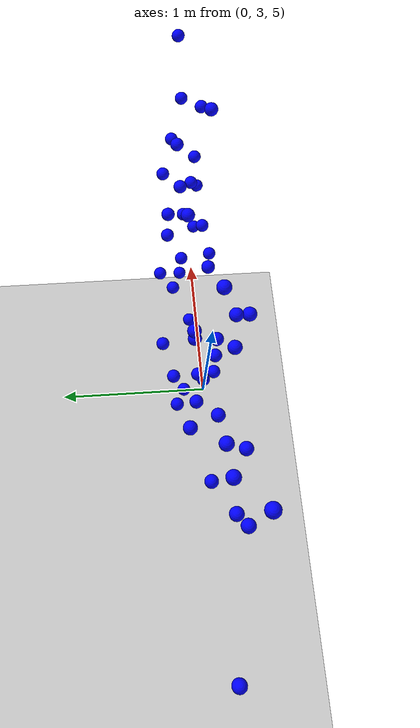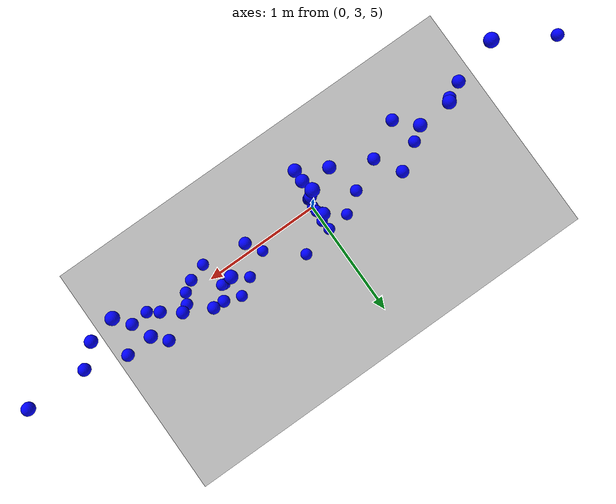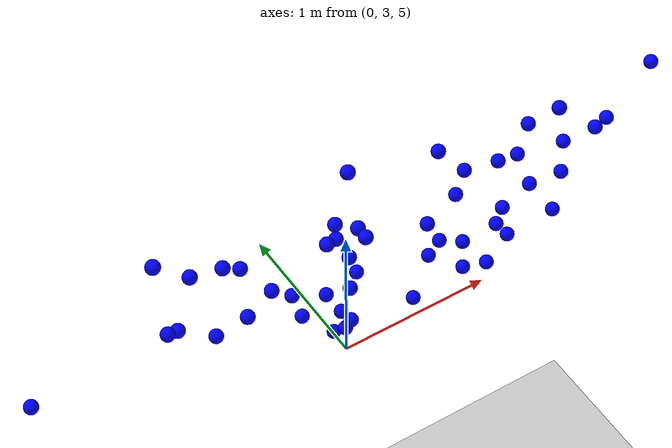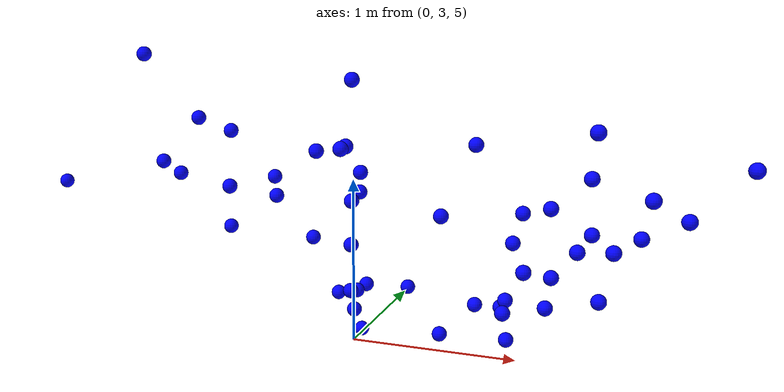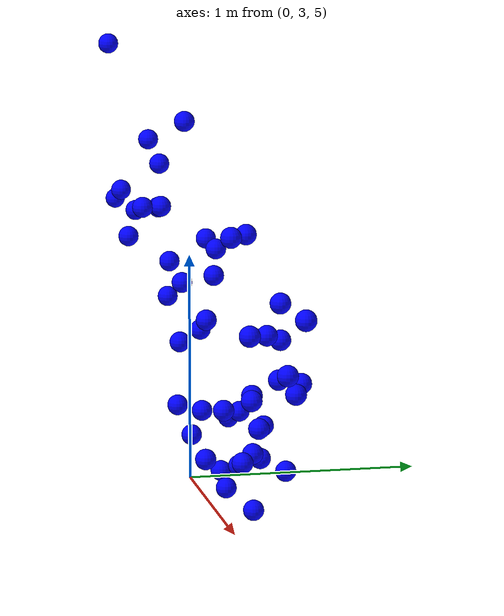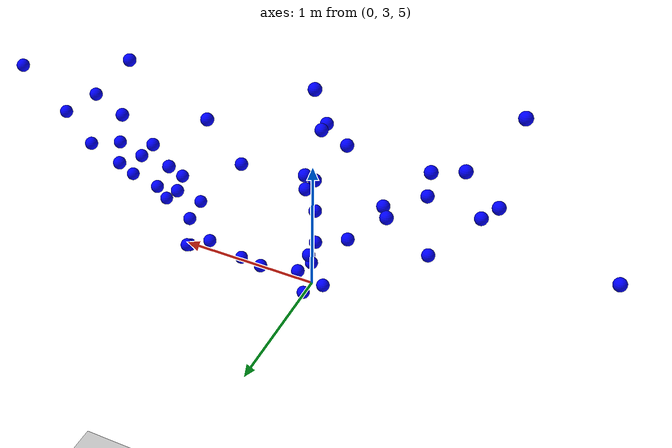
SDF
<sdf version="1.10">
 <world name="sphere">
  <model name="ground_plane">
   <static>true</static>
   <link name="link">
    <collision name="collision">
     <geometry><plane><normal>0 0 1</normal><size>100 100</size></plane></geometry>
    </collision>
    <visual name="visual">
     <geometry><plane><normal>0 0 1</normal><size>100 100</size></plane></geometry>
     <material>
      <ambient>0.800000012 0.800000012 0.800000012 1</ambient>
      <diffuse>0.800000012 0.800000012 0.800000012 1</diffuse>
      <specular>0.800000012 0.800000012 0.800000012 1</specular>
     </material>
    </visual>
    <inertial>
     <mass>1</mass>
     <inertia><ixx>1</ixx><ixy>0</ixy><ixz>0</ixz><iyy>1</iyy><iyz>0</iyz><izz>1</izz></inertia>
    </inertial>
   </link>
  </model>
  <model name="sphere_00">
   <pose>-0.8101000189781189 3.01882004737854 6.2474203109741211 0 0 0</pose>
   <link name="sphere_link">
    <inertial>
     <inertia>
      <ixx>0.10000000000000001</ixx>
      <ixy>0</ixy>
      <ixz>0</ixz>
      <iyy>0.10000000000000001</iyy>
      <iyz>0</iyz>
      <izz>0.10000000000000001</izz>
     </inertia>
     <mass>1</mass>
    </inertial>
    <collision name="sphere_collision">
     <geometry><sphere><radius>0.044999999999999998</radius></sphere></geometry>
    </collision>
    <visual name="sphere_visual">
     <geometry><sphere><radius>0.044999999999999998</radius></sphere></geometry>
     <material><ambient>0 0 1 1</ambient><diffuse>0 0 1 1</diffuse><specular>0 0 1 1</specular></material>
    </visual>
   </link>
   <static>false</static>
   <self_collide>true</self_collide>
  </model>
  <model name="sphere_01">
   <pose>-0.30862641334533691 3.1076400279998779 5.5938301086425781 0 0 0</pose>
   <link name="sphere_link">
    <inertial>
     <inertia>
      <ixx>0.10000000000000001</ixx>
      <ixy>0</ixy>
      <ixz>0</ixz>
      <iyy>0.10000000000000001</iyy>
      <iyz>0</iyz>
      <izz>0.10000000000000001</izz>
     </inertia>
     <mass>1</mass>
    </inertial>
    <collision name="sphere_collision">
     <geometry><sphere><radius>0.044999999999999998</radius></sphere></geometry>
    </collision>
    <visual name="sphere_visual">
     <geometry><sphere><radius>0.044999999999999998</radius></sphere></geometry>
     <material><ambient>0 0 1 1</ambient><diffuse>0 0 1 1</diffuse><specular>0 0 1 1</specular></material>
    </visual>
   </link>
   <static>false</static>
   <self_collide>true</self_collide>
  </model>
  <model name="sphere_02">
   <pose>-0.18142400681972504 3.2076399326324463 5.2198047637939453 0 0 0</pose>
   <link name="sphere_link">
    <inertial>
     <inertia>
      <ixx>0.10000000000000001</ixx>
      <ixy>0</ixy>
      <ixz>0</ixz>
      <iyy>0.10000000000000001</iyy>
      <iyz>0</iyz>
      <izz>0.10000000000000001</izz>
     </inertia>
     <mass>1</mass>
    </inertial>
    <collision name="sphere_collision">
     <geometry><sphere><radius>0.044999999999999998</radius></sphere></geometry>
    </collision>
    <visual name="sphere_visual">
     <geometry><sphere><radius>0.044999999999999998</radius></sphere></geometry>
     <material><ambient>0 0 1 1</ambient><diffuse>0 0 1 1</diffuse><specular>0 0 1 1</specular></material>
    </visual>
   </link>
   <static>false</static>
   <self_collide>true</self_collide>
  </model>
  <model name="sphere_03">
   <pose>1.3758639097213745 3.2076399326324463 5.7371301651000977 0 0 0</pose>
   <link name="sphere_link">
    <inertial>
     <inertia>
      <ixx>0.10000000000000001</ixx>
      <ixy>0</ixy>
      <ixz>0</ixz>
      <iyy>0.10000000000000001</iyy>
      <iyz>0</iyz>
      <izz>0.10000000000000001</izz>
     </inertia>
     <mass>1</mass>
    </inertial>
    <collision name="sphere_collision">
     <geometry><sphere><radius>0.044999999999999998</radius></sphere></geometry>
    </collision>
    <visual name="sphere_visual">
     <geometry><sphere><radius>0.044999999999999998</radius></sphere></geometry>
     <material><ambient>0 0 1 1</ambient><diffuse>0 0 1 1</diffuse><specular>0 0 1 1</specular></material>
    </visual>
   </link>
   <static>false</static>
   <self_collide>true</self_collide>
  </model>
  <model name="sphere_04">
   <pose>0.90909630060195923 3.0961899757385254 5.3272900581359863 0 0 0</pose>
   <link name="sphere_link">
    <inertial>
     <inertia>
      <ixx>0.10000000000000001</ixx>
      <ixy>0</ixy>
      <ixz>0</ixz>
      <iyy>0.10000000000000001</iyy>
      <iyz>0</iyz>
      <izz>0.10000000000000001</izz>
     </inertia>
     <mass>1</mass>
    </inertial>
    <collision name="sphere_collision">
     <geometry><sphere><radius>0.044999999999999998</radius></sphere></geometry>
    </collision>
    <visual name="sphere_visual">
     <geometry><sphere><radius>0.044999999999999998</radius></sphere></geometry>
     <material><ambient>0 0 1 1</ambient><diffuse>0 0 1 1</diffuse><specular>0 0 1 1</specular></material>
    </visual>
   </link>
   <static>false</static>
   <self_collide>true</self_collide>
  </model>
  <model name="sphere_05">
   <pose>0 2.9661004543304443 5.8801798820495605 0 0 0</pose>
   <link name="sphere_link">
    <inertial>
     <inertia>
      <ixx>0.10000000000000001</ixx>
      <ixy>0</ixy>
      <ixz>0</ixz>
      <iyy>0.10000000000000001</iyy>
      <iyz>0</iyz>
      <izz>0.10000000000000001</izz>
     </inertia>
     <mass>1</mass>
    </inertial>
    <collision name="sphere_collision">
     <geometry><sphere><radius>0.044999999999999998</radius></sphere></geometry>
    </collision>
    <visual name="sphere_visual">
     <geometry><sphere><radius>0.044999999999999998</radius></sphere></geometry>
     <material><ambient>0 0 1 1</ambient><diffuse>0 0 1 1</diffuse><specular>0 0 1 1</specular></material>
    </visual>
   </link>
   <static>false</static>
   <self_collide>true</self_collide>
  </model>
  <model name="sphere_06">
   <pose>0.52478998899459839 3.0577552318572998 5.0836100578308105 0 0 0</pose>
   <link name="sphere_link">
    <inertial>
     <inertia>
      <ixx>0.10000000000000001</ixx>
      <ixy>0</ixy>
      <ixz>0</ixz>
      <iyy>0.10000000000000001</iyy>
      <iyz>0</iyz>
      <izz>0.10000000000000001</izz>
     </inertia>
     <mass>1</mass>
     <pose>0 0 0.69999999999999996 0 0 0</pose>
    </inertial>
    <collision name="sphere_collision">
     <geometry><sphere><radius>0.044999999999999998</radius></sphere></geometry>
    </collision>
    <visual name="sphere_visual">
     <geometry><sphere><radius>0.044999999999999998</radius></sphere></geometry>
     <material><ambient>0 0 1 1</ambient><diffuse>0 0 1 1</diffuse><specular>0 0 1 1</specular></material>
    </visual>
   </link>
   <static>false</static>
   <self_collide>true</self_collide>
  </model>
  <model name="sphere_07">
   <pose>0.84674102067947388 3.2525029182434082 5.2275600433349609 0 0 0</pose>
   <link name="sphere_link">
    <inertial>
     <inertia>
      <ixx>0.10000000000000001</ixx>
      <ixy>0</ixy>
      <ixz>0</ixz>
      <iyy>0.10000000000000001</iyy>
      <iyz>0</iyz>
      <izz>0.10000000000000001</izz>
     </inertia>
     <mass>1</mass>
    </inertial>
    <collision name="sphere_collision">
     <geometry><sphere><radius>0.044999999999999998</radius></sphere></geometry>
    </collision>
    <visual name="sphere_visual">
     <geometry><sphere><radius>0.044999999999999998</radius></sphere></geometry>
     <material><ambient>0 0 1 1</ambient><diffuse>0 0 1 1</diffuse><specular>0 0 1 1</specular></material>
    </visual>
   </link>
   <static>false</static>
   <self_collide>true</self_collide>
  </model>
  <model name="sphere_08">
   <pose>0 3.0543978214263916 5.3013801574707031 0 0 0</pose>
   <link name="sphere_link">
    <inertial>
     <inertia>
      <ixx>0.10000000000000001</ixx>
      <ixy>0</ixy>
      <ixz>0</ixz>
      <iyy>0.10000000000000001</iyy>
      <iyz>0</iyz>
      <izz>0.10000000000000001</izz>
     </inertia>
     <mass>1</mass>
    </inertial>
    <collision name="sphere_collision">
     <geometry><sphere><radius>0.044999999999999998</radius></sphere></geometry>
    </collision>
    <visual name="sphere_visual">
     <geometry><sphere><radius>0.044999999999999998</radius></sphere></geometry>
     <material><ambient>0 0 1 1</ambient><diffuse>0 0 1 1</diffuse><specular>0 0 1 1</specular></material>
    </visual>
   </link>
   <static>false</static>
   <self_collide>true</self_collide>
  </model>
  <model name="sphere_09">
   <pose>-0.50494199991226196 3.0061700344085693 5.8660669326782227 0 0 0</pose>
   <link name="sphere_link">
    <inertial>
     <inertia>
      <ixx>0.10000000000000001</ixx>
      <ixy>0</ixy>
      <ixz>0</ixz>
      <iyy>0.10000000000000001</iyy>
      <iyz>0</iyz>
      <izz>0.10000000000000001</izz>
     </inertia>
     <mass>1</mass>
     <pose>0 0 0.69999999999999996 0 0 0</pose>
    </inertial>
    <collision name="sphere_collision">
     <geometry><sphere><radius>0.044999999999999998</radius></sphere></geometry>
    </collision>
    <visual name="sphere_visual">
     <geometry><sphere><radius>0.044999999999999998</radius></sphere></geometry>
     <material><ambient>0 0 1 1</ambient><diffuse>0 0 1 1</diffuse><specular>0 0 1 1</specular></material>
    </visual>
   </link>
   <static>false</static>
   <self_collide>true</self_collide>
  </model>
  <model name="sphere_10">
   <pose>0 3.2213499546051025 5.2891402244567871 0 0 0</pose>
   <link name="sphere_link">
    <inertial>
     <inertia>
      <ixx>0.10000000000000001</ixx>
      <ixy>0</ixy>
      <ixz>0</ixz>
      <iyy>0.10000000000000001</iyy>
      <iyz>0</iyz>
      <izz>0.10000000000000001</izz>
     </inertia>
     <mass>1</mass>
     <pose>0 0 0.69999999999999996 0 0 0</pose>
    </inertial>
    <collision name="sphere_collision">
     <geometry><sphere><radius>0.044999999999999998</radius></sphere></geometry>
    </collision>
    <visual name="sphere_visual">
     <geometry><sphere><radius>0.044999999999999998</radius></sphere></geometry>
     <material><ambient>0 0 1 1</ambient><diffuse>0 0 1 1</diffuse><specular>0 0 1 1</specular></material>
    </visual>
   </link>
   <static>false</static>
   <self_collide>true</self_collide>
  </model>
  <model name="sphere_11">
   <pose>0 2.9791254997253418 6.5953397750854492 0 0 0</pose>
   <link name="sphere_link">
    <inertial>
     <inertia>
      <ixx>0.10000000000000001</ixx>
      <ixy>0</ixy>
      <ixz>0</ixz>
      <iyy>0.10000000000000001</iyy>
      <iyz>0</iyz>
      <izz>0.10000000000000001</izz>
     </inertia>
     <mass>1</mass>
     <pose>0 0 0.69999999999999996 0 0 0</pose>
    </inertial>
    <collision name="sphere_collision">
     <geometry><sphere><radius>0.044999999999999998</radius></sphere></geometry>
    </collision>
    <visual name="sphere_visual">
     <geometry><sphere><radius>0.044999999999999998</radius></sphere></geometry>
     <material><ambient>0 0 1 1</ambient><diffuse>0 0 1 1</diffuse><specular>0 0 1 1</specular></material>
    </visual>
   </link>
   <static>false</static>
   <self_collide>true</self_collide>
  </model>
  <model name="sphere_12">
   <pose>1.1540199518203735 3.1078150272369385 5.8965902328491211 0 0 0</pose>
   <link name="sphere_link">
    <inertial>
     <inertia>
      <ixx>0.10000000000000001</ixx>
      <ixy>0</ixy>
      <ixz>0</ixz>
      <iyy>0.10000000000000001</iyy>
      <iyz>0</iyz>
      <izz>0.10000000000000001</izz>
     </inertia>
     <mass>1</mass>
     <pose>0 0 0.69999999999999996 0 0 0</pose>
    </inertial>
    <collision name="sphere_collision">
     <geometry><sphere><radius>0.044999999999999998</radius></sphere></geometry>
    </collision>
    <visual name="sphere_visual">
     <geometry><sphere><radius>0.044999999999999998</radius></sphere></geometry>
     <material><ambient>0 0 1 1</ambient><diffuse>0 0 1 1</diffuse><specular>0 0 1 1</specular></material>
    </visual>
   </link>
   <static>false</static>
   <self_collide>true</self_collide>
  </model>
  <model name="sphere_13">
   <pose>0.25382706522941589 3.2772500514984131 5.2821002006530762 0 0 0</pose>
   <link name="sphere_link">
    <inertial>
     <inertia>
      <ixx>0.10000000000000001</ixx>
      <ixy>0</ixy>
      <ixz>0</ixz>
      <iyy>0.10000000000000001</iyy>
      <iyz>0</iyz>
      <izz>0.10000000000000001</izz>
     </inertia>
     <mass>1</mass>
     <pose>0 0 0.69999999999999996 0 0 0</pose>
    </inertial>
    <collision name="sphere_collision">
     <geometry><sphere><radius>0.044999999999999998</radius></sphere></geometry>
    </collision>
    <visual name="sphere_visual">
     <geometry><sphere><radius>0.044999999999999998</radius></sphere></geometry>
     <material><ambient>0 0 1 1</ambient><diffuse>0 0 1 1</diffuse><specular>0 0 1 1</specular></material>
    </visual>
   </link>
   <static>false</static>
   <self_collide>true</self_collide>
  </model>
  <model name="sphere_14">
   <pose>1.0408979654312134 2.9444799423217773 5.5553398132324219 0 0 0</pose>
   <link name="sphere_link">
    <inertial>
     <inertia>
      <ixx>0.10000000000000001</ixx>
      <ixy>0</ixy>
      <ixz>0</ixz>
      <iyy>0.10000000000000001</iyy>
      <iyz>0</iyz>
      <izz>0.10000000000000001</izz>
     </inertia>
     <mass>1</mass>
     <pose>0 0 0.69999999999999996 0 0 0</pose>
    </inertial>
    <collision name="sphere_collision">
     <geometry><sphere><radius>0.044999999999999998</radius></sphere></geometry>
    </collision>
    <visual name="sphere_visual">
     <geometry><sphere><radius>0.044999999999999998</radius></sphere></geometry>
     <material><ambient>0 0 1 1</ambient><diffuse>0 0 1 1</diffuse><specular>0 0 1 1</specular></material>
    </visual>
   </link>
   <static>false</static>
   <self_collide>true</self_collide>
  </model>
  <model name="sphere_15">
   <pose>-0.19403360784053802 2.8993599414825439 6.1798100471496582 0 0 0</pose>
   <link name="sphere_link">
    <inertial>
     <inertia>
      <ixx>0.10000000000000001</ixx>
      <ixy>0</ixy>
      <ixz>0</ixz>
      <iyy>0.10000000000000001</iyy>
      <iyz>0</iyz>
      <izz>0.10000000000000001</izz>
     </inertia>
     <mass>1</mass>
     <pose>0 0 0.69999999999999996 0 0 0</pose>
    </inertial>
    <collision name="sphere_collision">
     <geometry><sphere><radius>0.044999999999999998</radius></sphere></geometry>
    </collision>
    <visual name="sphere_visual">
     <geometry><sphere><radius>0.044999999999999998</radius></sphere></geometry>
     <material><ambient>0 0 1 1</ambient><diffuse>0 0 1 1</diffuse><specular>0 0 1 1</specular></material>
    </visual>
   </link>
   <static>false</static>
   <self_collide>true</self_collide>
  </model>
  <model name="sphere_16">
   <pose>-1.3119100332260132 2.8792433738708496 6.7110099792480469 0 0 0</pose>
   <link name="sphere_link">
    <inertial>
     <inertia>
      <ixx>0.10000000000000001</ixx>
      <ixy>0</ixy>
      <ixz>0</ixz>
      <iyy>0.10000000000000001</iyy>
      <iyz>0</iyz>
      <izz>0.10000000000000001</izz>
     </inertia>
     <mass>1</mass>
     <pose>0 0 0.69999999999999996 0 0 0</pose>
    </inertial>
    <collision name="sphere_collision">
     <geometry><sphere><radius>0.044999999999999998</radius></sphere></geometry>
    </collision>
    <visual name="sphere_visual">
     <geometry><sphere><radius>0.044999999999999998</radius></sphere></geometry>
     <material><ambient>0 0 1 1</ambient><diffuse>0 0 1 1</diffuse><specular>0 0 1 1</specular></material>
    </visual>
   </link>
   <static>false</static>
   <self_collide>true</self_collide>
  </model>
  <model name="sphere_17">
   <pose>1.1766971349716187 3.0682199001312256 5.5024600028991699 0 0 0</pose>
   <link name="sphere_link">
    <inertial>
     <inertia>
      <ixx>0.10000000000000001</ixx>
      <ixy>0</ixy>
      <ixz>0</ixz>
      <iyy>0.10000000000000001</iyy>
      <iyz>0</iyz>
      <izz>0.10000000000000001</izz>
     </inertia>
     <mass>1</mass>
     <pose>0 0 0.69999999999999996 0 0 0</pose>
    </inertial>
    <collision name="sphere_collision">
     <geometry><sphere><radius>0.044999999999999998</radius></sphere></geometry>
    </collision>
    <visual name="sphere_visual">
     <geometry><sphere><radius>0.044999999999999998</radius></sphere></geometry>
     <material><ambient>0 0 1 1</ambient><diffuse>0 0 1 1</diffuse><specular>0 0 1 1</specular></material>
    </visual>
   </link>
   <static>false</static>
   <self_collide>true</self_collide>
  </model>
  <model name="sphere_18">
   <pose>1.3726999759674072 3.1196067333221436 6.0826001167297363 0 0 0</pose>
   <link name="sphere_link">
    <inertial>
     <inertia>
      <ixx>0.10000000000000001</ixx>
      <ixy>0</ixy>
      <ixz>0</ixz>
      <iyy>0.10000000000000001</iyy>
      <iyz>0</iyz>
      <izz>0.10000000000000001</izz>
     </inertia>
     <mass>1</mass>
     <pose>0 0 0.69999999999999996 0 0 0</pose>
    </inertial>
    <collision name="sphere_collision">
     <geometry><sphere><radius>0.044999999999999998</radius></sphere></geometry>
    </collision>
    <visual name="sphere_visual">
     <geometry><sphere><radius>0.044999999999999998</radius></sphere></geometry>
     <material><ambient>0 0 1 1</ambient><diffuse>0 0 1 1</diffuse><specular>0 0 1 1</specular></material>
    </visual>
   </link>
   <static>false</static>
   <self_collide>true</self_collide>
  </model>
  <model name="sphere_19">
   <pose>-0.74941295385360718 2.8662300109863281 5.9346098899841309 0 0 0</pose>
   <link name="sphere_link">
    <inertial>
     <inertia>
      <ixx>0.10000000000000001</ixx>
      <ixy>0</ixy>
      <ixz>0</ixz>
      <iyy>0.10000000000000001</iyy>
      <iyz>0</iyz>
      <izz>0.10000000000000001</izz>
     </inertia>
     <mass>1</mass>
     <pose>0 0 0.69999999999999996 0 0 0</pose>
    </inertial>
    <collision name="sphere_collision">
     <geometry><sphere><radius>0.044999999999999998</radius></sphere></geometry>
    </collision>
    <visual name="sphere_visual">
     <geometry><sphere><radius>0.044999999999999998</radius></sphere></geometry>
     <material><ambient>0 0 1 1</ambient><diffuse>0 0 1 1</diffuse><specular>0 0 1 1</specular></material>
    </visual>
   </link>
   <static>false</static>
   <self_collide>true</self_collide>
  </model>
  <model name="sphere_20">
   <pose>1.5283499956130981 2.966209888458252 5.7112307548522949 0 0 0</pose>
   <link name="sphere_link">
    <inertial>
     <inertia>
      <ixx>0.10000000000000001</ixx>
      <ixy>0</ixy>
      <ixz>0</ixz>
      <iyy>0.10000000000000001</iyy>
      <iyz>0</iyz>
      <izz>0.10000000000000001</izz>
     </inertia>
     <mass>1</mass>
     <pose>0 0 0.69999999999999996 0 0 0</pose>
    </inertial>
    <collision name="sphere_collision">
     <geometry><sphere><radius>0.044999999999999998</radius></sphere></geometry>
    </collision>
    <visual name="sphere_visual">
     <geometry><sphere><radius>0.044999999999999998</radius></sphere></geometry>
     <material><ambient>0 0 1 1</ambient><diffuse>0 0 1 1</diffuse><specular>0 0 1 1</specular></material>
    </visual>
   </link>
   <static>false</static>
   <self_collide>true</self_collide>
  </model>
  <model name="sphere_21">
   <pose>2.2217400074005127 3.0480799674987793 6.2031421661376953 0 0 0</pose>
   <link name="sphere_link">
    <inertial>
     <inertia>
      <ixx>0.10000000000000001</ixx>
      <ixy>0</ixy>
      <ixz>0</ixz>
      <iyy>0.10000000000000001</iyy>
      <iyz>0</iyz>
      <izz>0.10000000000000001</izz>
     </inertia>
     <mass>1</mass>
     <pose>0 0 0.69999999999999996 0 0 0</pose>
    </inertial>
    <collision name="sphere_collision">
     <geometry><sphere><radius>0.044999999999999998</radius></sphere></geometry>
    </collision>
    <visual name="sphere_visual">
     <geometry><sphere><radius>0.044999999999999998</radius></sphere></geometry>
     <material><ambient>0 0 1 1</ambient><diffuse>0 0 1 1</diffuse><specular>0 0 1 1</specular></material>
    </visual>
   </link>
   <static>false</static>
   <self_collide>true</self_collide>
  </model>
  <model name="sphere_22">
   <pose>-1.0258899927139282 3.0086886882781982 6.3174500465393066 0 0 0</pose>
   <link name="sphere_link">
    <inertial>
     <inertia>
      <ixx>0.10000000000000001</ixx>
      <ixy>0</ixy>
      <ixz>0</ixz>
      <iyy>0.10000000000000001</iyy>
      <iyz>0</iyz>
      <izz>0.10000000000000001</izz>
     </inertia>
     <mass>1</mass>
     <pose>0 0 0.69999999999999996 0 0 0</pose>
    </inertial>
    <collision name="sphere_collision">
     <geometry><sphere><radius>0.044999999999999998</radius></sphere></geometry>
    </collision>
    <visual name="sphere_visual">
     <geometry><sphere><radius>0.044999999999999998</radius></sphere></geometry>
     <material><ambient>0 0 1 1</ambient><diffuse>0 0 1 1</diffuse><specular>0 0 1 1</specular></material>
    </visual>
   </link>
   <static>false</static>
   <self_collide>true</self_collide>
  </model>
  <model name="sphere_23">
   <pose>1.7234451770782471 2.9191300868988037 6.0306200981140137 0 0 0</pose>
   <link name="sphere_link">
    <inertial>
     <inertia>
      <ixx>0.10000000000000001</ixx>
      <ixy>0</ixy>
      <ixz>0</ixz>
      <iyy>0.10000000000000001</iyy>
      <iyz>0</iyz>
      <izz>0.10000000000000001</izz>
     </inertia>
     <mass>1</mass>
     <pose>0 0 0.69999999999999996 0 0 0</pose>
    </inertial>
    <collision name="sphere_collision">
     <geometry><sphere><radius>0.044999999999999998</radius></sphere></geometry>
    </collision>
    <visual name="sphere_visual">
     <geometry><sphere><radius>0.044999999999999998</radius></sphere></geometry>
     <material><ambient>0 0 1 1</ambient><diffuse>0 0 1 1</diffuse><specular>0 0 1 1</specular></material>
    </visual>
   </link>
   <static>false</static>
   <self_collide>true</self_collide>
  </model>
  <model name="sphere_24">
   <pose>0.920390784740448 3.0976099967956543 5.0828800201416016 0 0 0</pose>
   <link name="sphere_link">
    <inertial>
     <inertia>
      <ixx>0.10000000000000001</ixx>
      <ixy>0</ixy>
      <ixz>0</ixz>
      <iyy>0.10000000000000001</iyy>
      <iyz>0</iyz>
      <izz>0.10000000000000001</izz>
     </inertia>
     <mass>1</mass>
     <pose>0 0 0.69999999999999996 0 0 0</pose>
    </inertial>
    <collision name="sphere_collision">
     <geometry><sphere><radius>0.044999999999999998</radius></sphere></geometry>
    </collision>
    <visual name="sphere_visual">
     <geometry><sphere><radius>0.044999999999999998</radius></sphere></geometry>
     <material><ambient>0 0 1 1</ambient><diffuse>0 0 1 1</diffuse><specular>0 0 1 1</specular></material>
    </visual>
   </link>
   <static>false</static>
   <self_collide>true</self_collide>
  </model>
  <model name="sphere_25">
   <pose>1.1628700494766235 2.9856400489807129 5.3452863693237305 0 0 0</pose>
   <link name="sphere_link">
    <inertial>
     <inertia>
      <ixx>0.10000000000000001</ixx>
      <ixy>0</ixy>
      <ixz>0</ixz>
      <iyy>0.10000000000000001</iyy>
      <iyz>0</iyz>
      <izz>0.10000000000000001</izz>
     </inertia>
     <mass>1</mass>
     <pose>0 0 0.69999999999999996 0 0 0</pose>
    </inertial>
    <collision name="sphere_collision">
     <geometry><sphere><radius>0.044999999999999998</radius></sphere></geometry>
    </collision>
    <visual name="sphere_visual">
     <geometry><sphere><radius>0.044999999999999998</radius></sphere></geometry>
     <material><ambient>0 0 1 1</ambient><diffuse>0 0 1 1</diffuse><specular>0 0 1 1</specular></material>
    </visual>
   </link>
   <static>false</static>
   <self_collide>true</self_collide>
  </model>
  <model name="sphere_26">
   <pose>0 2.7930459976196289 6.2225799560546875 0 0 0</pose>
   <link name="sphere_link">
    <inertial>
     <inertia>
      <ixx>0.10000000000000001</ixx>
      <ixy>0</ixy>
      <ixz>0</ixz>
      <iyy>0.10000000000000001</iyy>
      <iyz>0</iyz>
      <izz>0.10000000000000001</izz>
     </inertia>
     <mass>1</mass>
     <pose>0 0 0.69999999999999996 0 0 0</pose>
    </inertial>
    <collision name="sphere_collision">
     <geometry><sphere><radius>0.044999999999999998</radius></sphere></geometry>
    </collision>
    <visual name="sphere_visual">
     <geometry><sphere><radius>0.044999999999999998</radius></sphere></geometry>
     <material><ambient>0 0 1 1</ambient><diffuse>0 0 1 1</diffuse><specular>0 0 1 1</specular></material>
    </visual>
   </link>
   <static>false</static>
   <self_collide>true</self_collide>
  </model>
  <model name="sphere_27">
   <pose>1.4216636419296265 2.9017300605773926 6.3804302215576172 0 0 0</pose>
   <link name="sphere_link">
    <inertial>
     <inertia>
      <ixx>0.10000000000000001</ixx>
      <ixy>0</ixy>
      <ixz>0</ixz>
      <iyy>0.10000000000000001</iyy>
      <iyz>0</iyz>
      <izz>0.10000000000000001</izz>
     </inertia>
     <mass>1</mass>
     <pose>0 0 0.69999999999999996 0 0 0</pose>
    </inertial>
    <collision name="sphere_collision">
     <geometry><sphere><radius>0.044999999999999998</radius></sphere></geometry>
    </collision>
    <visual name="sphere_visual">
     <geometry><sphere><radius>0.044999999999999998</radius></sphere></geometry>
     <material><ambient>0 0 1 1</ambient><diffuse>0 0 1 1</diffuse><specular>0 0 1 1</specular></material>
    </visual>
   </link>
   <static>false</static>
   <self_collide>true</self_collide>
  </model>
  <model name="sphere_28">
   <pose>1.6581699848175049 3.1258094310760498 5.7612099647521973 0 0 0</pose>
   <link name="sphere_link">
    <inertial>
     <inertia>
      <ixx>0.10000000000000001</ixx>
      <ixy>0</ixy>
      <ixz>0</ixz>
      <iyy>0.10000000000000001</iyy>
      <iyz>0</iyz>
      <izz>0.10000000000000001</izz>
     </inertia>
     <mass>1</mass>
     <pose>0 0 0.69999999999999996 0 0 0</pose>
    </inertial>
    <collision name="sphere_collision">
     <geometry><sphere><radius>0.044999999999999998</radius></sphere></geometry>
    </collision>
    <visual name="sphere_visual">
     <geometry><sphere><radius>0.044999999999999998</radius></sphere></geometry>
     <material><ambient>0 0 1 1</ambient><diffuse>0 0 1 1</diffuse><specular>0 0 1 1</specular></material>
    </visual>
   </link>
   <static>false</static>
   <self_collide>true</self_collide>
  </model>
  <model name="sphere_29">
   <pose>0 2.8735411167144775 6.2235097885131836 0 0 0</pose>
   <link name="sphere_link">
    <inertial>
     <inertia>
      <ixx>0.10000000000000001</ixx>
      <ixy>0</ixy>
      <ixz>0</ixz>
      <iyy>0.10000000000000001</iyy>
      <iyz>0</iyz>
      <izz>0.10000000000000001</izz>
     </inertia>
     <mass>1</mass>
     <pose>0 0 0.69999999999999996 0 0 0</pose>
    </inertial>
    <collision name="sphere_collision">
     <geometry><sphere><radius>0.044999999999999998</radius></sphere></geometry>
    </collision>
    <visual name="sphere_visual">
     <geometry><sphere><radius>0.044999999999999998</radius></sphere></geometry>
     <material><ambient>0 0 1 1</ambient><diffuse>0 0 1 1</diffuse><specular>0 0 1 1</specular></material>
    </visual>
   </link>
   <static>false</static>
   <self_collide>true</self_collide>
  </model>
  <model name="sphere_30">
   <pose>0 3.0074362754821777 5.1943202018737793 0 0 0</pose>
   <link name="sphere_link">
    <inertial>
     <inertia>
      <ixx>0.10000000000000001</ixx>
      <ixy>0</ixy>
      <ixz>0</ixz>
      <iyy>0.10000000000000001</iyy>
      <iyz>0</iyz>
      <izz>0.10000000000000001</izz>
     </inertia>
     <mass>1</mass>
     <pose>0 0 0.69999999999999996 0 0 0</pose>
    </inertial>
    <collision name="sphere_collision">
     <geometry><sphere><radius>0.044999999999999998</radius></sphere></geometry>
    </collision>
    <visual name="sphere_visual">
     <geometry><sphere><radius>0.044999999999999998</radius></sphere></geometry>
     <material><ambient>0 0 1 1</ambient><diffuse>0 0 1 1</diffuse><specular>0 0 1 1</specular></material>
    </visual>
   </link>
   <static>false</static>
   <self_collide>true</self_collide>
  </model>
  <model name="sphere_31">
   <pose>-0.85268700122833252 3.0630147457122803 5.6283798217773438 0 0 0</pose>
   <link name="sphere_link">
    <inertial>
     <inertia>
      <ixx>0.10000000000000001</ixx>
      <ixy>0</ixy>
      <ixz>0</ixz>
      <iyy>0.10000000000000001</iyy>
      <iyz>0</iyz>
      <izz>0.10000000000000001</izz>
     </inertia>
     <mass>1</mass>
     <pose>0 0 0.69999999999999996 0 0 0</pose>
    </inertial>
    <collision name="sphere_collision">
     <geometry><sphere><radius>0.044999999999999998</radius></sphere></geometry>
    </collision>
    <visual name="sphere_visual">
     <geometry><sphere><radius>0.044999999999999998</radius></sphere></geometry>
     <material><ambient>0 0 1 1</ambient><diffuse>0 0 1 1</diffuse><specular>0 0 1 1</specular></material>
    </visual>
   </link>
   <static>false</static>
   <self_collide>true</self_collide>
  </model>
  <model name="sphere_32">
   <pose>-1.2347300052642822 2.9205100536346436 6.0470070838928223 0 0 0</pose>
   <link name="sphere_link">
    <inertial>
     <inertia>
      <ixx>0.10000000000000001</ixx>
      <ixy>0</ixy>
      <ixz>0</ixz>
      <iyy>0.10000000000000001</iyy>
      <iyz>0</iyz>
      <izz>0.10000000000000001</izz>
     </inertia>
     <mass>1</mass>
     <pose>0 0 0.69999999999999996 0 0 0</pose>
    </inertial>
    <collision name="sphere_collision">
     <geometry><sphere><radius>0.044999999999999998</radius></sphere></geometry>
    </collision>
    <visual name="sphere_visual">
     <geometry><sphere><radius>0.044999999999999998</radius></sphere></geometry>
     <material><ambient>0 0 1 1</ambient><diffuse>0 0 1 1</diffuse><specular>0 0 1 1</specular></material>
    </visual>
   </link>
   <static>false</static>
   <self_collide>true</self_collide>
  </model>
  <model name="sphere_33">
   <pose>-0.60159999132156372 3.1903257369995117 5.940730094909668 0 0 0</pose>
   <link name="sphere_link">
    <inertial>
     <inertia>
      <ixx>0.10000000000000001</ixx>
      <ixy>0</ixy>
      <ixz>0</ixz>
      <iyy>0.10000000000000001</iyy>
      <iyz>0</iyz>
      <izz>0.10000000000000001</izz>
     </inertia>
     <mass>1</mass>
     <pose>0 0 0.69999999999999996 0 0 0</pose>
    </inertial>
    <collision name="sphere_collision">
     <geometry><sphere><radius>0.044999999999999998</radius></sphere></geometry>
    </collision>
    <visual name="sphere_visual">
     <geometry><sphere><radius>0.044999999999999998</radius></sphere></geometry>
     <material><ambient>0 0 1 1</ambient><diffuse>0 0 1 1</diffuse><specular>0 0 1 1</specular></material>
    </visual>
   </link>
   <static>false</static>
   <self_collide>true</self_collide>
  </model>
  <model name="sphere_34">
   <pose>0 2.9557774066925049 5.6145200729370117 0 0 0</pose>
   <link name="sphere_link">
    <inertial>
     <inertia>
      <ixx>0.10000000000000001</ixx>
      <ixy>0</ixy>
      <ixz>0</ixz>
      <iyy>0.10000000000000001</iyy>
      <iyz>0</iyz>
      <izz>0.10000000000000001</izz>
     </inertia>
     <mass>1</mass>
     <pose>0 0 0.69999999999999996 0 0 0</pose>
    </inertial>
    <collision name="sphere_collision">
     <geometry><sphere><radius>0.044999999999999998</radius></sphere></geometry>
    </collision>
    <visual name="sphere_visual">
     <geometry><sphere><radius>0.044999999999999998</radius></sphere></geometry>
     <material><ambient>0 0 1 1</ambient><diffuse>0 0 1 1</diffuse><specular>0 0 1 1</specular></material>
    </visual>
   </link>
   <static>false</static>
   <self_collide>true</self_collide>
  </model>
  <model name="sphere_35">
   <pose>1.9086498022079468 3.0391800403594971 5.9025201797485352 0 0 0</pose>
   <link name="sphere_link">
    <inertial>
     <inertia>
      <ixx>0.10000000000000001</ixx>
      <ixy>0</ixy>
      <ixz>0</ixz>
      <iyy>0.10000000000000001</iyy>
      <iyz>0</iyz>
      <izz>0.10000000000000001</izz>
     </inertia>
     <mass>1</mass>
     <pose>0 0 0.69999999999999996 0 0 0</pose>
    </inertial>
    <collision name="sphere_collision">
     <geometry><sphere><radius>0.044999999999999998</radius></sphere></geometry>
    </collision>
    <visual name="sphere_visual">
     <geometry><sphere><radius>0.044999999999999998</radius></sphere></geometry>
     <material><ambient>0 0 1 1</ambient><diffuse>0 0 1 1</diffuse><specular>0 0 1 1</specular></material>
    </visual>
   </link>
   <static>false</static>
   <self_collide>true</self_collide>
  </model>
  <model name="sphere_36">
   <pose>0 3.137521505355835 5.0250701904296875 0 0 0</pose>
   <link name="sphere_link">
    <inertial>
     <inertia>
      <ixx>0.10000000000000001</ixx>
      <ixy>0</ixy>
      <ixz>0</ixz>
      <iyy>0.10000000000000001</iyy>
      <iyz>0</iyz>
      <izz>0.10000000000000001</izz>
     </inertia>
     <mass>1</mass>
     <pose>0 0 0.69999999999999996 0 0 0</pose>
    </inertial>
    <collision name="sphere_collision">
     <geometry><sphere><radius>0.044999999999999998</radius></sphere></geometry>
    </collision>
    <visual name="sphere_visual">
     <geometry><sphere><radius>0.044999999999999998</radius></sphere></geometry>
     <material><ambient>0 0 1 1</ambient><diffuse>0 0 1 1</diffuse><specular>0 0 1 1</specular></material>
    </visual>
   </link>
   <static>false</static>
   <self_collide>true</self_collide>
  </model>
  <model name="sphere_37">
   <pose>-1.1448651552200317 2.9704298973083496 5.9682598114013672 0 0 0</pose>
   <link name="sphere_link">
    <inertial>
     <inertia>
      <ixx>0.10000000000000001</ixx>
      <ixy>0</ixy>
      <ixz>0</ixz>
      <iyy>0.10000000000000001</iyy>
      <iyz>0</iyz>
      <izz>0.10000000000000001</izz>
     </inertia>
     <mass>1</mass>
     <pose>0 0 0.69999999999999996 0 0 0</pose>
    </inertial>
    <collision name="sphere_collision">
     <geometry><sphere><radius>0.044999999999999998</radius></sphere></geometry>
    </collision>
    <visual name="sphere_visual">
     <geometry><sphere><radius>0.044999999999999998</radius></sphere></geometry>
     <material><ambient>0 0 1 1</ambient><diffuse>0 0 1 1</diffuse><specular>0 0 1 1</specular></material>
    </visual>
   </link>
   <static>false</static>
   <self_collide>true</self_collide>
  </model>
  <model name="sphere_38">
   <pose>0.70926922559738159 3.1699800491333008 5.2538199424743652 0 0 0</pose>
   <link name="sphere_link">
    <inertial>
     <inertia>
      <ixx>0.10000000000000001</ixx>
      <ixy>0</ixy>
      <ixz>0</ixz>
      <iyy>0.10000000000000001</iyy>
      <iyz>0</iyz>
      <izz>0.10000000000000001</izz>
     </inertia>
     <mass>1</mass>
     <pose>0 0 0.69999999999999996 0 0 0</pose>
    </inertial>
    <collision name="sphere_collision">
     <geometry><sphere><radius>0.044999999999999998</radius></sphere></geometry>
    </collision>
    <visual name="sphere_visual">
     <geometry><sphere><radius>0.044999999999999998</radius></sphere></geometry>
     <material><ambient>0 0 1 1</ambient><diffuse>0 0 1 1</diffuse><specular>0 0 1 1</specular></material>
    </visual>
   </link>
   <static>false</static>
   <self_collide>true</self_collide>
  </model>
  <model name="sphere_39">
   <pose>1.3259987831115723 3.0083398818969727 5.6839499473571777 0 0 0</pose>
   <link name="sphere_link">
    <inertial>
     <inertia>
      <ixx>0.10000000000000001</ixx>
      <ixy>0</ixy>
      <ixz>0</ixz>
      <iyy>0.10000000000000001</iyy>
      <iyz>0</iyz>
      <izz>0.10000000000000001</izz>
     </inertia>
     <mass>1</mass>
     <pose>0 0 0.69999999999999996 0 0 0</pose>
    </inertial>
    <collision name="sphere_collision">
     <geometry><sphere><radius>0.044999999999999998</radius></sphere></geometry>
    </collision>
    <visual name="sphere_visual">
     <geometry><sphere><radius>0.044999999999999998</radius></sphere></geometry>
     <material><ambient>0 0 1 1</ambient><diffuse>0 0 1 1</diffuse><specular>0 0 1 1</specular></material>
    </visual>
   </link>
   <static>false</static>
   <self_collide>true</self_collide>
  </model>
  <model name="sphere_40">
   <pose>1.4648668766021729 2.9401900768280029 5.4328398704528809 0 0 0</pose>
   <link name="sphere_link">
    <inertial>
     <inertia>
      <ixx>0.10000000000000001</ixx>
      <ixy>0</ixy>
      <ixz>0</ixz>
      <iyy>0.10000000000000001</iyy>
      <iyz>0</iyz>
      <izz>0.10000000000000001</izz>
     </inertia>
     <mass>1</mass>
     <pose>0 0 0.69999999999999996 0 0 0</pose>
    </inertial>
    <collision name="sphere_collision">
     <geometry><sphere><radius>0.044999999999999998</radius></sphere></geometry>
    </collision>
    <visual name="sphere_visual">
     <geometry><sphere><radius>0.044999999999999998</radius></sphere></geometry>
     <material><ambient>0 0 1 1</ambient><diffuse>0 0 1 1</diffuse><specular>0 0 1 1</specular></material>
    </visual>
   </link>
   <static>false</static>
   <self_collide>true</self_collide>
  </model>
  <model name="sphere_41">
   <pose>0 3.1170649528503418 6.0235199928283691 0 0 0</pose>
   <link name="sphere_link">
    <inertial>
     <inertia>
      <ixx>0.10000000000000001</ixx>
      <ixy>0</ixy>
      <ixz>0</ixz>
      <iyy>0.10000000000000001</iyy>
      <iyz>0</iyz>
      <izz>0.10000000000000001</izz>
     </inertia>
     <mass>1</mass>
     <pose>0 0 0.69999999999999996 0 0 0</pose>
    </inertial>
    <collision name="sphere_collision">
     <geometry><sphere><radius>0.044999999999999998</radius></sphere></geometry>
    </collision>
    <visual name="sphere_visual">
     <geometry><sphere><radius>0.044999999999999998</radius></sphere></geometry>
     <material><ambient>0 0 1 1</ambient><diffuse>0 0 1 1</diffuse><specular>0 0 1 1</specular></material>
    </visual>
   </link>
   <static>false</static>
   <self_collide>true</self_collide>
  </model>
  <model name="sphere_42">
   <pose>0.54871690273284912 2.9668200016021729 5.8345599174499512 0 0 0</pose>
   <link name="sphere_link">
    <inertial>
     <inertia>
      <ixx>0.10000000000000001</ixx>
      <ixy>0</ixy>
      <ixz>0</ixz>
      <iyy>0.10000000000000001</iyy>
      <iyz>0</iyz>
      <izz>0.10000000000000001</izz>
     </inertia>
     <mass>1</mass>
     <pose>0 0 0.69999999999999996 0 0 0</pose>
    </inertial>
    <collision name="sphere_collision">
     <geometry><sphere><radius>0.044999999999999998</radius></sphere></geometry>
    </collision>
    <visual name="sphere_visual">
     <geometry><sphere><radius>0.044999999999999998</radius></sphere></geometry>
     <material><ambient>0 0 1 1</ambient><diffuse>0 0 1 1</diffuse><specular>0 0 1 1</specular></material>
    </visual>
   </link>
   <static>false</static>
   <self_collide>true</self_collide>
  </model>
  <model name="sphere_43">
   <pose>0.9218519926071167 3.2054018974304199 5.6465001106262207 0 0 0</pose>
   <link name="sphere_link">
    <inertial>
     <inertia>
      <ixx>0.10000000000000001</ixx>
      <ixy>0</ixy>
      <ixz>0</ixz>
      <iyy>0.10000000000000001</iyy>
      <iyz>0</iyz>
      <izz>0.10000000000000001</izz>
     </inertia>
     <mass>1</mass>
     <pose>0 0 0.69999999999999996 0 0 0</pose>
    </inertial>
    <collision name="sphere_collision">
     <geometry><sphere><radius>0.044999999999999998</radius></sphere></geometry>
    </collision>
    <visual name="sphere_visual">
     <geometry><sphere><radius>0.044999999999999998</radius></sphere></geometry>
     <material><ambient>0 0 1 1</ambient><diffuse>0 0 1 1</diffuse><specular>0 0 1 1</specular></material>
    </visual>
   </link>
   <static>false</static>
   <self_collide>true</self_collide>
  </model>
  <model name="sphere_44">
   <pose>0.9764549732208252 3.2027599811553955 5.8323245048522949 0 0 0</pose>
   <link name="sphere_link">
    <inertial>
     <inertia>
      <ixx>0.10000000000000001</ixx>
      <ixy>0</ixy>
      <ixz>0</ixz>
      <iyy>0.10000000000000001</iyy>
      <iyz>0</iyz>
      <izz>0.10000000000000001</izz>
     </inertia>
     <mass>1</mass>
     <pose>0 0 0.69999999999999996 0 0 0</pose>
    </inertial>
    <collision name="sphere_collision">
     <geometry><sphere><radius>0.044999999999999998</radius></sphere></geometry>
    </collision>
    <visual name="sphere_visual">
     <geometry><sphere><radius>0.044999999999999998</radius></sphere></geometry>
     <material><ambient>0 0 1 1</ambient><diffuse>0 0 1 1</diffuse><specular>0 0 1 1</specular></material>
    </visual>
   </link>
   <static>false</static>
   <self_collide>true</self_collide>
  </model>
  <model name="sphere_45">
   <pose>0 2.9454939365386963 5.3318800926208496 0 0 0</pose>
   <link name="sphere_link">
    <inertial>
     <inertia>
      <ixx>0.10000000000000001</ixx>
      <ixy>0</ixy>
      <ixz>0</ixz>
      <iyy>0.10000000000000001</iyy>
      <iyz>0</iyz>
      <izz>0.10000000000000001</izz>
     </inertia>
     <mass>1</mass>
     <pose>0 0 0.69999999999999996 0 0 0</pose>
    </inertial>
    <collision name="sphere_collision">
     <geometry><sphere><radius>0.044999999999999998</radius></sphere></geometry>
    </collision>
    <visual name="sphere_visual">
     <geometry><sphere><radius>0.044999999999999998</radius></sphere></geometry>
     <material><ambient>0 0 1 1</ambient><diffuse>0 0 1 1</diffuse><specular>0 0 1 1</specular></material>
    </visual>
   </link>
   <static>false</static>
   <self_collide>true</self_collide>
  </model>
  <model name="sphere_46">
   <pose>-2.0550100803375244 3.0402500629425049 5.8366270065307617 0 0 0</pose>
   <link name="sphere_link">
    <inertial>
     <inertia>
      <ixx>0.10000000000000001</ixx>
      <ixy>0</ixy>
      <ixz>0</ixz>
      <iyy>0.10000000000000001</iyy>
      <iyz>0</iyz>
      <izz>0.10000000000000001</izz>
     </inertia>
     <mass>1</mass>
     <pose>0 0 0.69999999999999996 0 0 0</pose>
    </inertial>
    <collision name="sphere_collision">
     <geometry><sphere><radius>0.044999999999999998</radius></sphere></geometry>
    </collision>
    <visual name="sphere_visual">
     <geometry><sphere><radius>0.044999999999999998</radius></sphere></geometry>
     <material><ambient>0 0 1 1</ambient><diffuse>0 0 1 1</diffuse><specular>0 0 1 1</specular></material>
    </visual>
   </link>
   <static>false</static>
   <self_collide>true</self_collide>
  </model>
  <model name="sphere_47">
   <pose>0.71168500185012817 3.1084346771240234 6.2366299629211426 0 0 0</pose>
   <link name="sphere_link">
    <inertial>
     <inertia>
      <ixx>0.10000000000000001</ixx>
      <ixy>0</ixy>
      <ixz>0</ixz>
      <iyy>0.10000000000000001</iyy>
      <iyz>0</iyz>
      <izz>0.10000000000000001</izz>
     </inertia>
     <mass>1</mass>
     <pose>0 0 0.69999999999999996 0 0 0</pose>
    </inertial>
    <collision name="sphere_collision">
     <geometry><sphere><radius>0.044999999999999998</radius></sphere></geometry>
    </collision>
    <visual name="sphere_visual">
     <geometry><sphere><radius>0.044999999999999998</radius></sphere></geometry>
     <material><ambient>0 0 1 1</ambient><diffuse>0 0 1 1</diffuse><specular>0 0 1 1</specular></material>
    </visual>
   </link>
   <static>false</static>
   <self_collide>true</self_collide>
  </model>
  <model name="sphere_48">
   <pose>0 3.1077263355255127 5.904900074005127 0 0 0</pose>
   <link name="sphere_link">
    <inertial>
     <inertia>
      <ixx>0.10000000000000001</ixx>
      <ixy>0</ixy>
      <ixz>0</ixz>
      <iyy>0.10000000000000001</iyy>
      <iyz>0</iyz>
      <izz>0.10000000000000001</izz>
     </inertia>
     <mass>1</mass>
     <pose>0 0 0.69999999999999996 0 0 0</pose>
    </inertial>
    <collision name="sphere_collision">
     <geometry><sphere><radius>0.044999999999999998</radius></sphere></geometry>
    </collision>
    <visual name="sphere_visual">
     <geometry><sphere><radius>0.044999999999999998</radius></sphere></geometry>
     <material><ambient>0 0 1 1</ambient><diffuse>0 0 1 1</diffuse><specular>0 0 1 1</specular></material>
    </visual>
   </link>
   <static>false</static>
   <self_collide>true</self_collide>
  </model>
  <model name="sphere_49">
   <pose>0.94022500514984131 2.8869268894195557 5.3212299346923828 0 0 0</pose>
   <link name="sphere_link">
    <inertial>
     <inertia>
      <ixx>0.10000000000000001</ixx>
      <ixy>0</ixy>
      <ixz>0</ixz>
      <iyy>0.10000000000000001</iyy>
      <iyz>0</iyz>
      <izz>0.10000000000000001</izz>
     </inertia>
     <mass>1</mass>
     <pose>0 0 0.69999999999999996 0 0 0</pose>
    </inertial>
    <collision name="sphere_collision">
     <geometry><sphere><radius>0.044999999999999998</radius></sphere></geometry>
    </collision>
    <visual name="sphere_visual">
     <geometry><sphere><radius>0.044999999999999998</radius></sphere></geometry>
     <material><ambient>0 0 1 1</ambient><diffuse>0 0 1 1</diffuse><specular>0 0 1 1</specular></material>
    </visual>
   </link>
   <static>false</static>
   <self_collide>true</self_collide>
  </model>
 </world>
</sdf>
